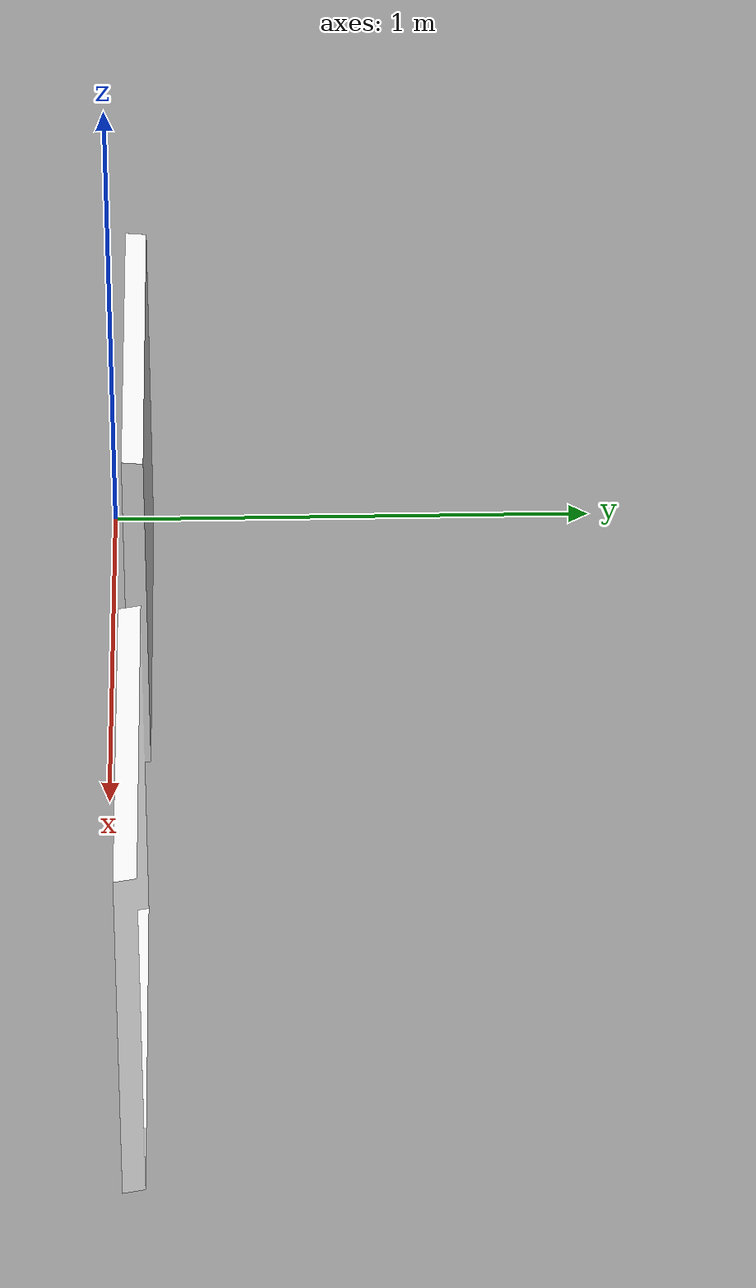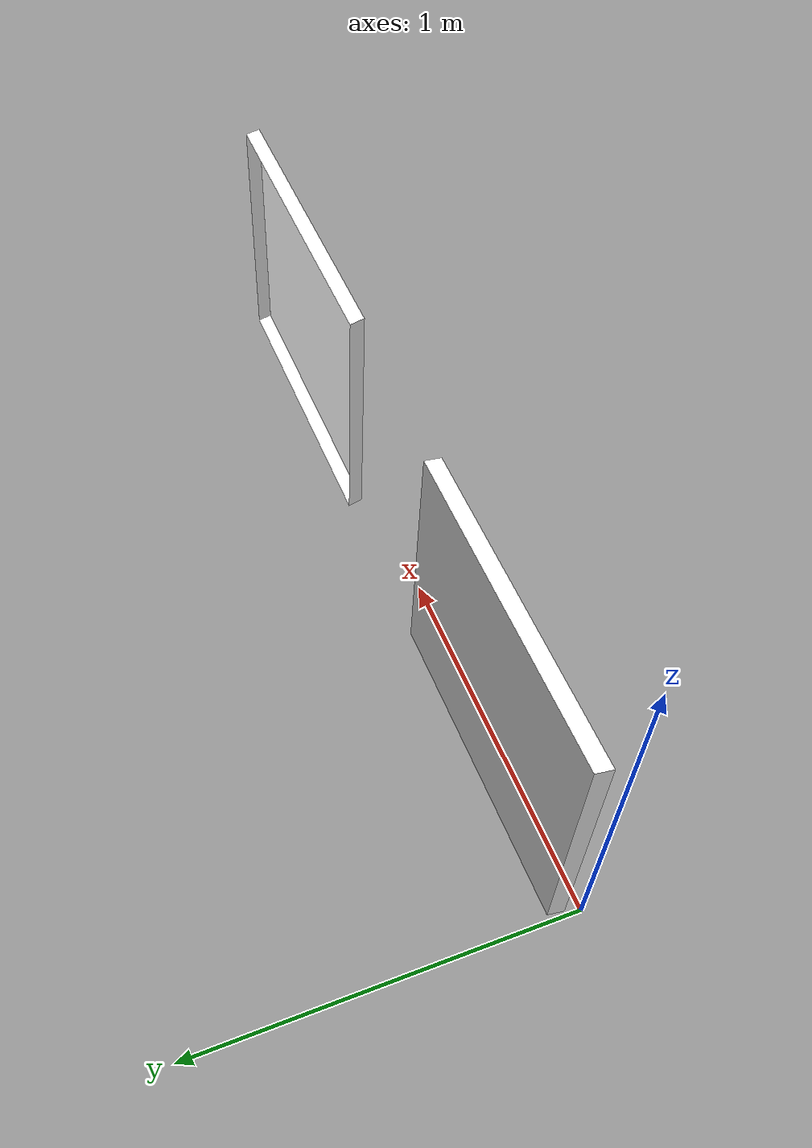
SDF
<?xml version="1.0" ?>
<sdf version="1.5">
  <model name="two_pictures">
    <static>true</static>
    <pose>0 0 0 0 0 0</pose>
    <link name="body">
      <inertial>
        <mass>5</mass>
        <inertia>
          <ixx>1.0</ixx>
          <ixy>0.0</ixy>
          <iyy>1.0</iyy>
          <ixz>0.0</ixz>
          <iyz>0.0</iyz>
          <izz>1.0</izz>
        </inertia>
        <pose>0 0 0 0 0 0</pose>
      </inertial>
      <collision name="collision">
        <geometry>
          <mesh>
            <uri>model://two_pictures/meshes/two_pictures.dae</uri>
          </mesh>
        </geometry>
      </collision>
      <visual name="visual">
        <geometry>
          <mesh>
            <uri>model://two_pictures/meshes/two_pictures.dae</uri>
          </mesh>
        </geometry>
      </visual>
    </link>
  </model>
</sdf>
